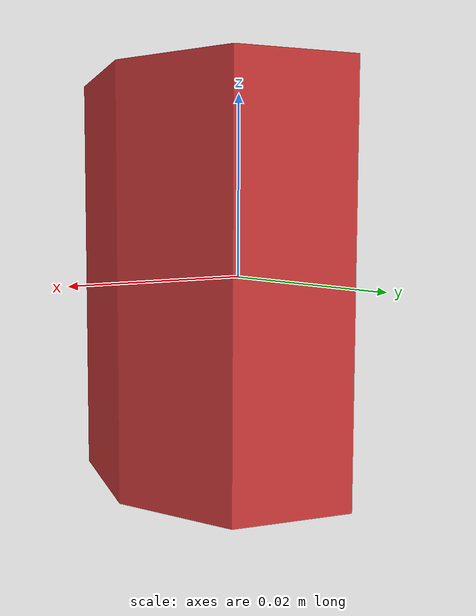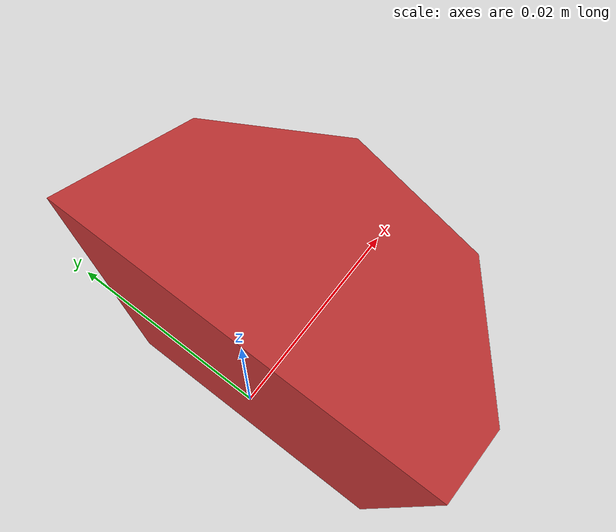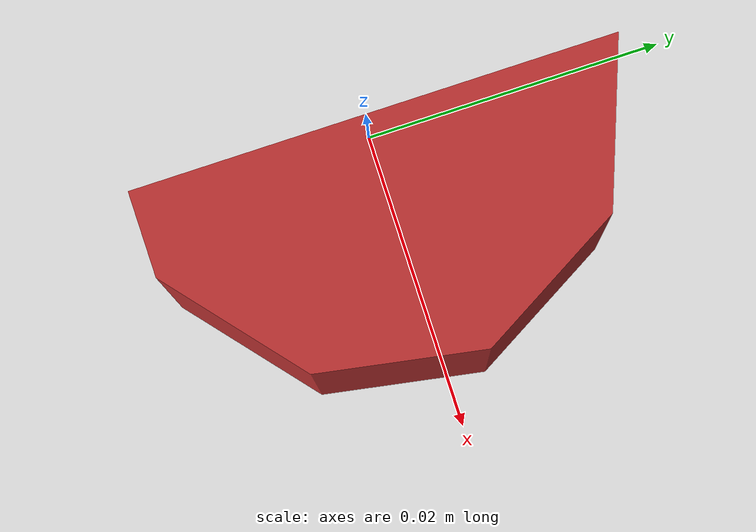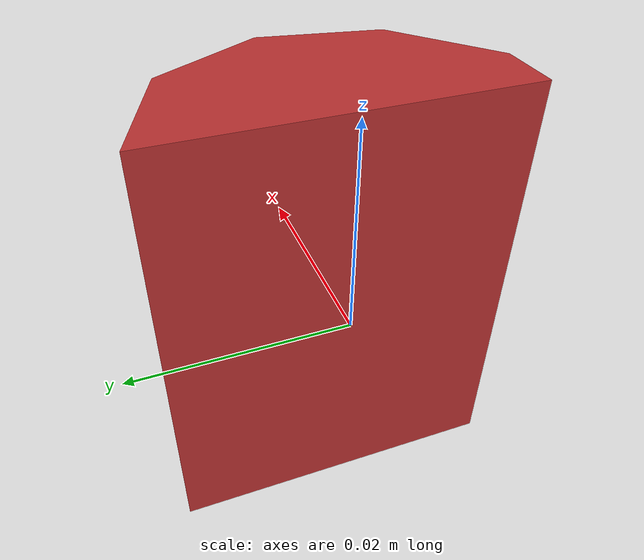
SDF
<?xml version="1.0" ?>
<sdf version='1.6'>
  <model name='cyl_0'>
    <link name='cyl_0'>
      <pose frame=''>0 0 0 0 0 0</pose>
      <inertial>
        <pose frame=''>0.006801 -0.000000 0.000000 0. 0. 0.</pose>
        <mass>1.64974950132e-05</mass>
        <inertia>
          <ixx>3.36377400451e-09</ixx>
          <ixy>-1.80026226655e-12</ixy>
          <ixz>6.28572038493e-27</ixz>
          <iyy>2.60070825543e-09</iyy>
          <iyz>-1.37862992179e-26</iyz>
          <izz>1.35608720165e-09</izz>
        </inertia>
      </inertial>
      <visual>
        <pose frame=''>0 0 0 0 0 0</pose>
        <geometry>
          <mesh>
            <scale>1 1 1</scale>
            <uri>models/half_carrot_models/meshes/cyl_0.obj</uri>
          </mesh>
        </geometry>
        <material>
          <ambient>0.75 0.2 0.2 1.0</ambient>
          <diffuse>0.75 0.2 0.2 1.0</diffuse>
          <specular>0.01 0.01 0.01 1</specular>
          <emissive>0 0 0 1</emissive>
          <shader type='vertex'>
            <normal_map>__default__</normal_map>
          </shader>
        </material>
      </visual>
      <collision>
        <pose frame=''>0 0 0 0 0 0</pose>
        <geometry>
          <mesh>
            <scale>1 1 1</scale>
            <uri>models/half_carrot_models/meshes/cyl_0.obj</uri>
          </mesh>
        </geometry>
      </collision>
      <gravity>1</gravity>
      <self_collide>0</self_collide>
    </link>
  </model>
</sdf>
